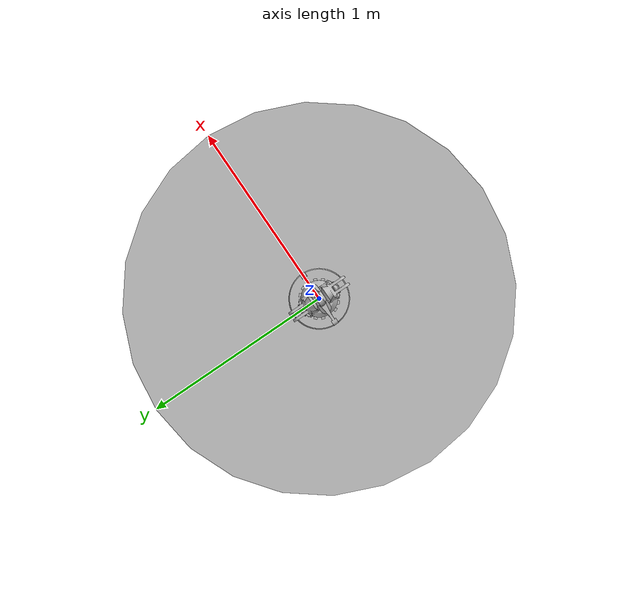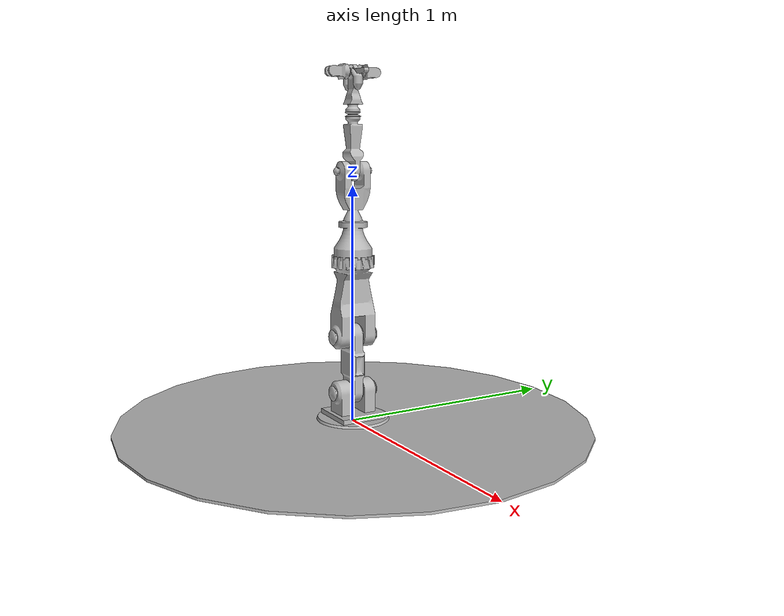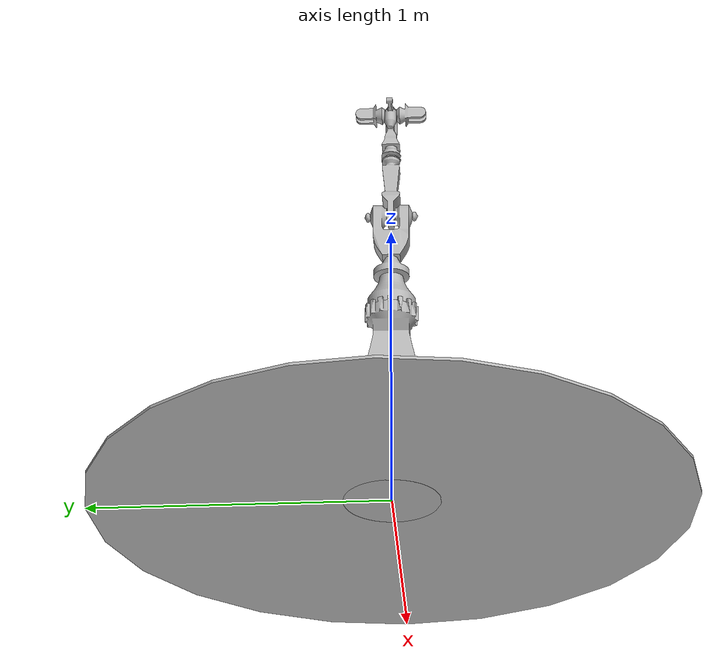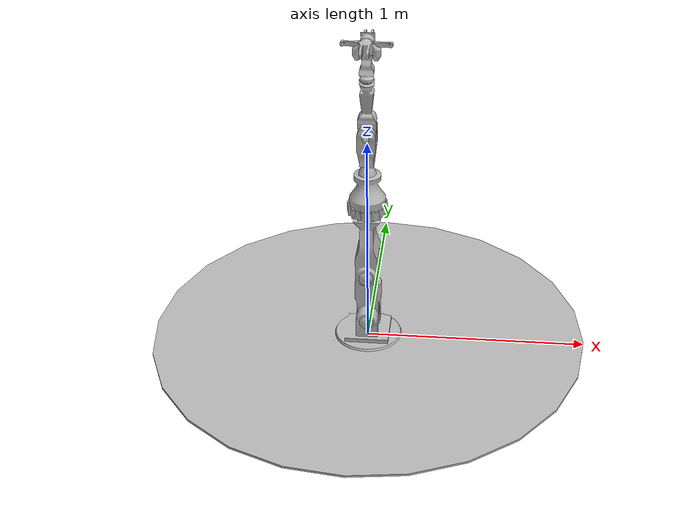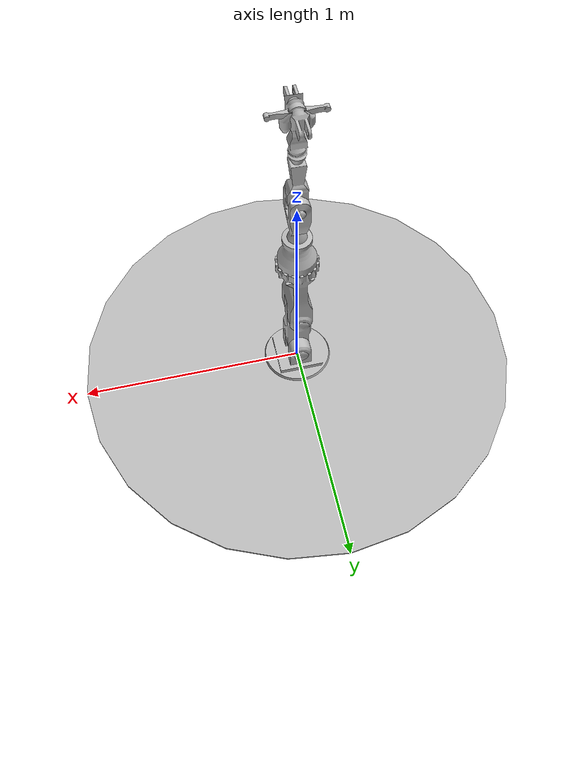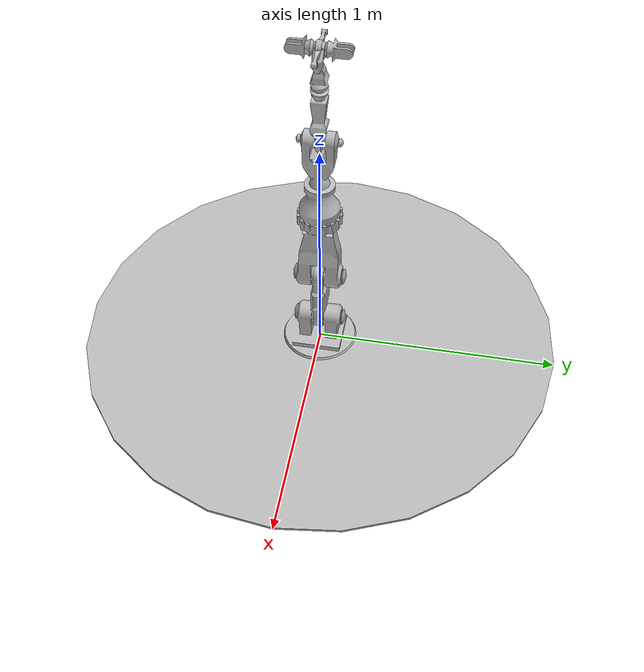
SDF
<sdf version='1.7'>
  <model name='marco'>
    <joint name='fixed' type='fixed'>
      <pose relative_to='__model__'>0 0 0 0 -0 0</pose>
      <parent>world</parent>
      <child>link0</child>
    </joint>
    <link name='link0'>
      <pose relative_to='fixed'>0 0 0 0 -0 0</pose>
      <inertial>
        <pose>0 0 0 0 -0 0</pose>
        <mass>1</mass>
        <inertia>
          <ixx>1</ixx>
          <ixy>0</ixy>
          <ixz>0</ixz>
          <iyy>1</iyy>
          <iyz>0</iyz>
          <izz>1</izz>
        </inertia>
      </inertial>
      <visual name='link0_visual'>
        <pose>0 0 0.005 0 -0 0</pose>
        <geometry>
          <cylinder>
            <length>0.01</length>
            <radius>1</radius>
          </cylinder>
        </geometry>
      </visual>
    </link>
    <joint name='joint1' type='revolute'>
      <pose relative_to='link0'>0 0 0 0 -0 0</pose>
      <parent>link0</parent>
      <child>link1</child>
      <axis>
        <xyz>0 0 1</xyz>
        <limit>
          <lower>-1e+16</lower>
          <upper>1e+16</upper>
        </limit>
        <dynamics>
          <damping>0.5</damping>
          <friction>0</friction>
          <spring_reference>0</spring_reference>
          <spring_stiffness>0</spring_stiffness>
        </dynamics>
      </axis>
    </joint>
    <link name='link1'>
      <pose relative_to='joint1'>0 0 0 0 -0 0</pose>
      <inertial>
        <pose>0 0 0 0 -0 0</pose>
        <mass>0.065</mass>
        <inertia>
          <ixx>9.15417e-05</ixx>
          <ixy>0</ixy>
          <ixz>0</ixz>
          <iyy>0</iyy>
          <iyz>0</iyz>
          <izz>0.000366167</izz>
        </inertia>
      </inertial>
      <collision name='link1_collision'>
        <pose>0 0 0.065 0 -0 0</pose>
        <geometry>
          <cylinder>
            <length>0.03</length>
            <radius>0.05</radius>
          </cylinder>
        </geometry>
      </collision>
      <visual name='link1_visual'>
        <pose>0 0 0 0 -0 1.5708</pose>
        <geometry>
          <mesh>
            <scale>0.1 0.1 0.1</scale>
            <uri>model://marco_description/models/marco/meshes/link1.stl</uri>
          </mesh>
        </geometry>
      </visual>
    </link>
    <joint name='joint2' type='revolute'>
      <pose relative_to='link1'>0 0 0.13 0 -0 0</pose>
      <parent>link1</parent>
      <child>link2</child>
      <axis>
        <xyz>0 -1 0</xyz>
        <limit>
          <lower>-1e+16</lower>
          <upper>1e+16</upper>
        </limit>
        <dynamics>
          <damping>0.5</damping>
          <friction>0</friction>
          <spring_reference>0</spring_reference>
          <spring_stiffness>0</spring_stiffness>
        </dynamics>
      </axis>
    </joint>
    <link name='link2'>
      <pose relative_to='joint2'>0 0 0 0 -0 0</pose>
      <inertial>
        <pose>0 0 0 0 -0 0</pose>
        <mass>0.12</mass>
        <inertia>
          <ixx>0.000576</ixx>
          <ixy>0</ixy>
          <ixz>0</ixz>
          <iyy>0</iyy>
          <iyz>0</iyz>
          <izz>0.002304</izz>
        </inertia>
      </inertial>
      <collision name='link2_collision'>
        <pose>0 0 0.12 0 -0 0</pose>
        <geometry>
          <cylinder>
            <length>0.14</length>
            <radius>0.05</radius>
          </cylinder>
        </geometry>
      </collision>
      <visual name='link2_visual'>
        <pose>0 0 0 0 -0 1.5708</pose>
        <geometry>
          <mesh>
            <scale>0.1 0.1 0.1</scale>
            <uri>model://marco_description/models/marco/meshes/link2.stl</uri>
          </mesh>
        </geometry>
      </visual>
    </link>
    <joint name='joint3' type='revolute'>
      <pose relative_to='link2'>0 0 0.24 0 -0 0</pose>
      <parent>link2</parent>
      <child>link3</child>
      <axis>
        <xyz>0 -1 0</xyz>
        <limit>
          <lower>-1e+16</lower>
          <upper>1e+16</upper>
        </limit>
        <dynamics>
          <damping>0.5</damping>
          <friction>0</friction>
          <spring_reference>0</spring_reference>
          <spring_stiffness>0</spring_stiffness>
        </dynamics>
      </axis>
    </joint>
    <link name='link3'>
      <pose relative_to='joint3'>0 0 0 0 -0 0</pose>
      <inertial>
        <pose>0 0 0 0 -0 0</pose>
        <mass>0.165</mass>
        <inertia>
          <ixx>0.00149738</ixx>
          <ixy>0</ixy>
          <ixz>0</ixz>
          <iyy>0</iyy>
          <iyz>0</iyz>
          <izz>0.0059895</izz>
        </inertia>
      </inertial>
      <collision name='link3_collision'>
        <pose>0 0 0.165 0 -0 0</pose>
        <geometry>
          <cylinder>
            <length>0.23</length>
            <radius>0.05</radius>
          </cylinder>
        </geometry>
      </collision>
      <visual name='link3_visual'>
        <pose>0 0 0 0 -0 1.5708</pose>
        <geometry>
          <mesh>
            <scale>0.1 0.1 0.1</scale>
            <uri>model://marco_description/models/marco/meshes/link3.stl</uri>
          </mesh>
        </geometry>
      </visual>
    </link>
    <joint name='joint4' type='revolute'>
      <pose relative_to='link3'>0 0 0.33 0 -0 0</pose>
      <parent>link3</parent>
      <child>link4</child>
      <axis>
        <xyz>0 0 1</xyz>
        <limit>
          <lower>-1e+16</lower>
          <upper>1e+16</upper>
        </limit>
        <dynamics>
          <damping>0.5</damping>
          <friction>0</friction>
          <spring_reference>0</spring_reference>
          <spring_stiffness>0</spring_stiffness>
        </dynamics>
      </axis>
    </joint>
    <link name='link4'>
      <pose relative_to='joint4'>0 0 0 0 -0 0</pose>
      <inertial>
        <pose>0 0 0 0 -0 0</pose>
        <mass>0.18</mass>
        <inertia>
          <ixx>0.001944</ixx>
          <ixy>0</ixy>
          <ixz>0</ixz>
          <iyy>0</iyy>
          <iyz>0</iyz>
          <izz>0.007776</izz>
        </inertia>
      </inertial>
      <collision name='link4_collision'>
        <pose>0 0 0.18 0 -0 0</pose>
        <geometry>
          <cylinder>
            <length>0.26</length>
            <radius>0.05</radius>
          </cylinder>
        </geometry>
      </collision>
      <visual name='link4_visual'>
        <pose>0 0 0 0 -0 1.5708</pose>
        <geometry>
          <mesh>
            <scale>0.1 0.1 0.1</scale>
            <uri>model://marco_description/models/marco/meshes/link4.stl</uri>
          </mesh>
        </geometry>
      </visual>
    </link>
    <joint name='joint5' type='revolute'>
      <pose relative_to='link4'>0 0 0.36 0 -0 0</pose>
      <parent>link4</parent>
      <child>link5</child>
      <axis>
        <xyz>0 -1 0</xyz>
        <limit>
          <lower>-1e+16</lower>
          <upper>1e+16</upper>
        </limit>
        <dynamics>
          <damping>0.5</damping>
          <friction>0</friction>
          <spring_reference>0</spring_reference>
          <spring_stiffness>0</spring_stiffness>
        </dynamics>
      </axis>
    </joint>
    <link name='link5'>
      <pose relative_to='joint5'>0 0 0 0 -0 0</pose>
      <inertial>
        <pose>0 0 0 0 -0 0</pose>
        <mass>0.115</mass>
        <inertia>
          <ixx>0.000506958</ixx>
          <ixy>0</ixy>
          <ixz>0</ixz>
          <iyy>0</iyy>
          <iyz>0</iyz>
          <izz>0.00202783</izz>
        </inertia>
      </inertial>
      <collision name='link5_collision'>
        <pose>0 0 0.115 0 -0 0</pose>
        <geometry>
          <cylinder>
            <length>0.13</length>
            <radius>0.05</radius>
          </cylinder>
        </geometry>
      </collision>
      <visual name='link5_visual'>
        <pose>0 0 0 0 -0 1.5708</pose>
        <geometry>
          <mesh>
            <scale>0.1 0.1 0.1</scale>
            <uri>model://marco_description/models/marco/meshes/link5.stl</uri>
          </mesh>
        </geometry>
      </visual>
    </link>
    <joint name='joint6' type='revolute'>
      <pose relative_to='link5'>0 0 0.23 0 -0 0</pose>
      <parent>link5</parent>
      <child>link6</child>
      <axis>
        <xyz>0 0 1</xyz>
        <limit>
          <lower>-1e+16</lower>
          <upper>1e+16</upper>
        </limit>
        <dynamics>
          <damping>0.5</damping>
          <friction>0</friction>
          <spring_reference>0</spring_reference>
          <spring_stiffness>0</spring_stiffness>
        </dynamics>
      </axis>
    </joint>
    <link name='link6'>
      <pose relative_to='joint6'>0 0 0 0 -0 0</pose>
      <inertial>
        <pose>-0 0 0.157773 0 -0 0</pose>
        <mass>2.155</mass>
        <inertia>
          <ixx>2.00912</ixx>
          <ixy>0</ixy>
          <ixz>-2.18953e-18</ixz>
          <iyy>2.02416</iyy>
          <iyz>0</iyz>
          <izz>2.02497</izz>
        </inertia>
      </inertial>
      <collision name='link6_collision'>
        <pose>0 0 0.155 0 -0 0</pose>
        <geometry>
          <cylinder>
            <length>0.21</length>
            <radius>0.05</radius>
          </cylinder>
        </geometry>
      </collision>
      <visual name='link6_visual'>
        <pose>0 0 0 0 -0 1.5708</pose>
        <geometry>
          <mesh>
            <scale>0.1 0.1 0.1</scale>
            <uri>model://marco_description/models/marco/meshes/link6.stl</uri>
          </mesh>
        </geometry>
      </visual>
      <visual name='link6_fixed_joint_lump__gripper_a_visual_1'>
        <pose>-0.1 0 0.17 0 1.5708 0</pose>
        <geometry>
          <mesh>
            <scale>0.1 0.1 0.1</scale>
            <uri>model://marco_description/models/marco/meshes/gripper_a.stl</uri>
          </mesh>
        </geometry>
      </visual>
      <visual name='link6_fixed_joint_lump__gripper_b_visual_2'>
        <pose>0.1 0 0.17 0 -1.5708 0</pose>
        <geometry>
          <mesh>
            <scale>0.1 0.1 0.1</scale>
            <uri>model://marco_description/models/marco/meshes/gripper_b.stl</uri>
          </mesh>
        </geometry>
      </visual>
    </link>
    <plugin name='gazebo_ros_control' filename='libgazebo_ros_control.so'>
      <robotNamespace>/marco</robotNamespace>
    </plugin>
    <static>0</static>
    <self_collide>1</self_collide>
  </model>
</sdf>
